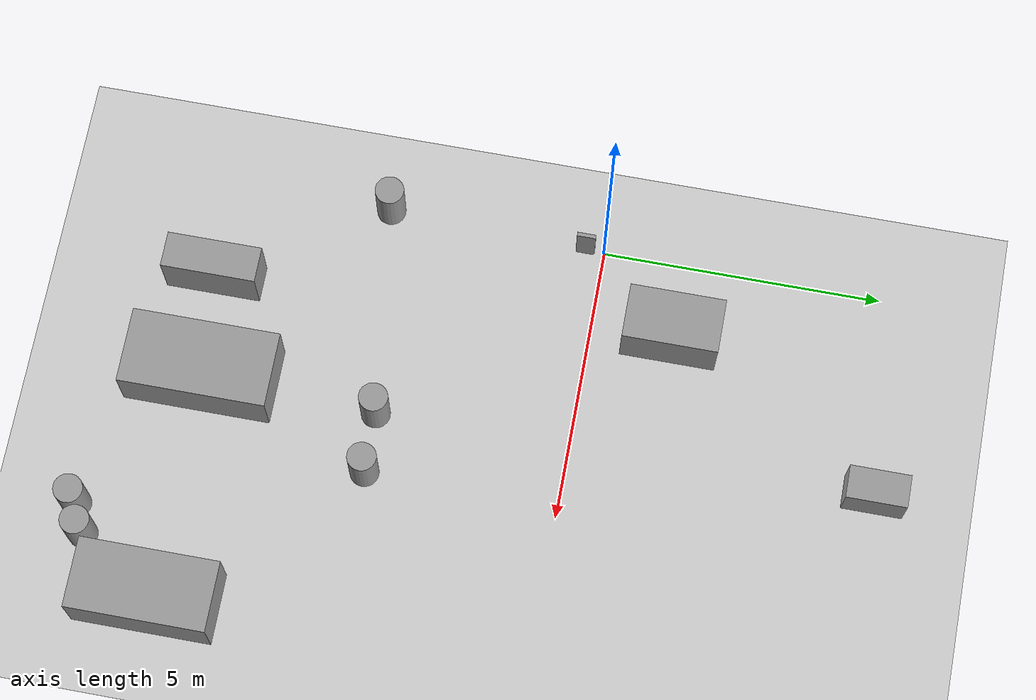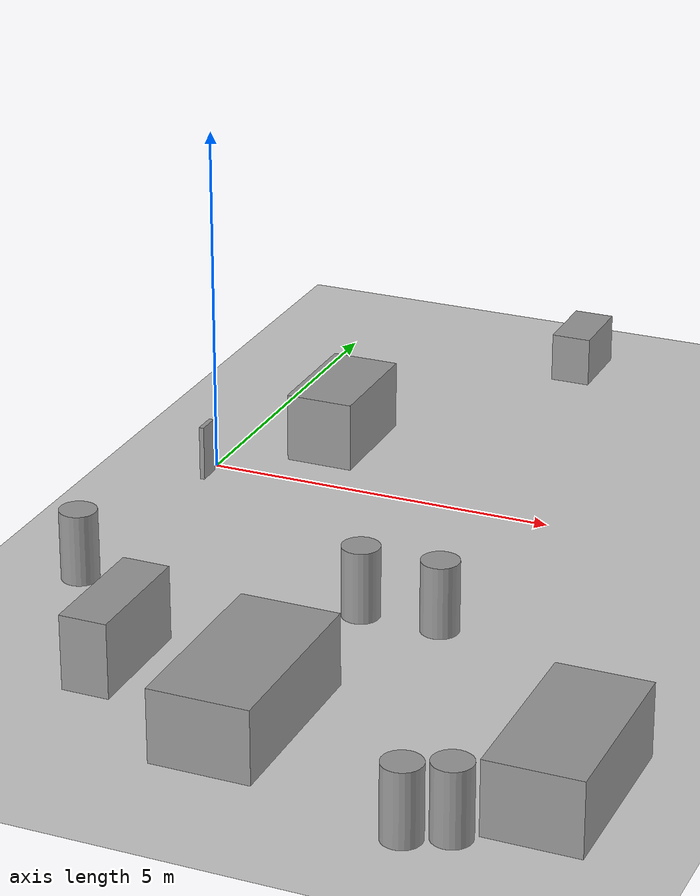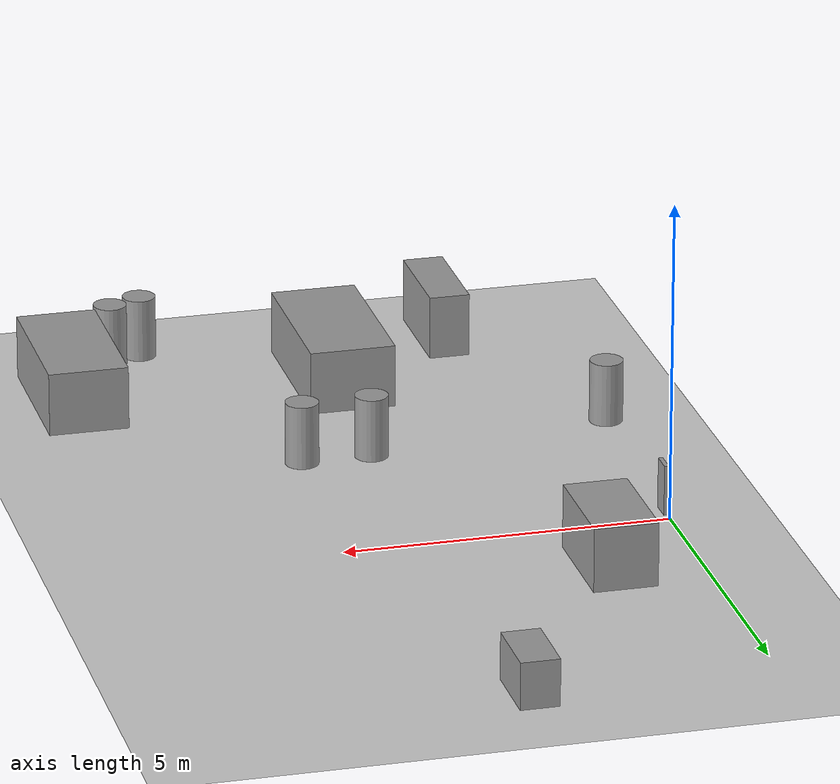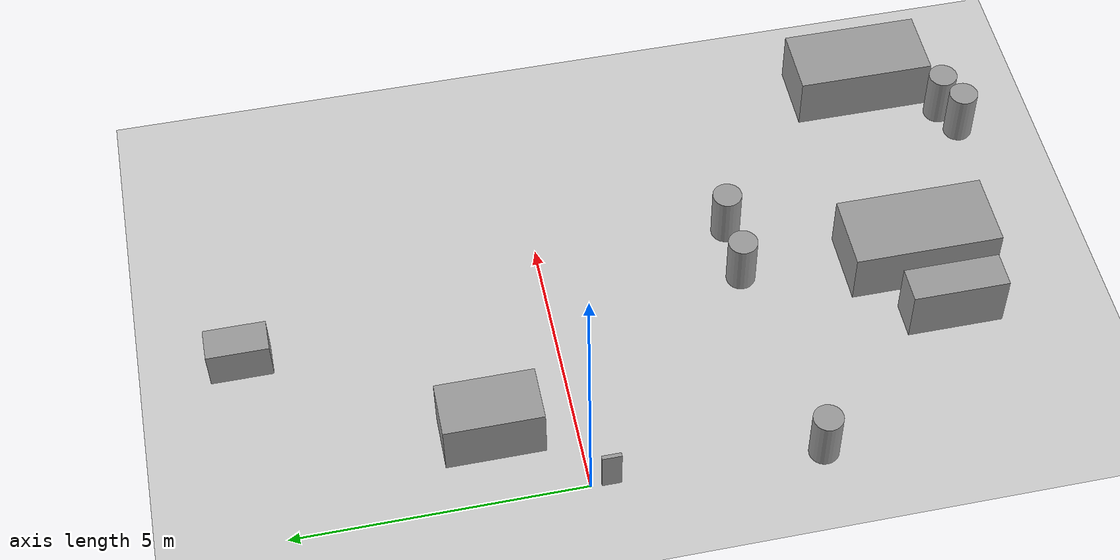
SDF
<sdf version="1.6">
 <world name="default">
  <model name="ground_plane">
   <static>1</static>
   <link name="link">
    <collision name="collision">
     <geometry><plane><normal>0 0 1</normal><size>100 100</size></plane></geometry>
     <surface><friction><ode><mu>100</mu><mu2>50</mu2></ode></friction></surface>
    </collision>
    <visual name="visual">
     <cast_shadows>0</cast_shadows>
     <geometry><plane><normal>0 0 1</normal><size>100 100</size></plane></geometry>
     <material>
      <script><uri>file://media/materials/scripts/gazebo.material</uri><name>Gazebo/Grey</name></script>
     </material>
    </visual>
   </link>
  </model>
  <model name="cma_sofa_2_lugares">
   <link name="link_0">
    <pose>-0.034013 -0.039828 0 0 -0 0</pose>
    <inertial>
     <mass>1.66071</mass>
     <inertia>
      <ixx>0.538183</ixx>
      <ixy>0</ixy>
      <ixz>0</ixz>
      <iyy>0.270519</iyy>
      <iyz>0</iyz>
      <izz>0.531915</izz>
     </inertia>
    </inertial>
    <visual name="visual">
     <geometry><box><size>0.977147 1.69968 1</size></box></geometry>
     <material>
      <lighting>1</lighting>
      <script><uri>file://media/materials/scripts/gazebo.material</uri><name>Gazebo/Grey</name></script>
      <ambient>0.3 0.3 0.3 1</ambient>
      <diffuse>0.7 0.7 0.7 1</diffuse>
      <specular>0.01 0.01 0.01 1</specular>
      <emissive>0 0 0 1</emissive>
     </material>
    </visual>
    <collision name="collision">
     <geometry><box><size>0.977147 1.69968 1</size></box></geometry>
     <surface>
      <friction>
       <ode><mu>1</mu><mu2>1</mu2><fdir1>0 0 0</fdir1><slip1>0</slip1><slip2>0</slip2></ode>
       <torsional>
        <coefficient>1</coefficient>
        <patch_radius>0</patch_radius>
        <surface_radius>0</surface_radius>
        <use_patch_radius>1</use_patch_radius>
        <ode><slip>0</slip></ode>
       </torsional>
      </friction>
      <bounce><restitution_coefficient>0</restitution_coefficient><threshold>1e+06</threshold></bounce>
      <contact>
       <collide_without_contact>0</collide_without_contact>
       <collide_without_contact_bitmask>1</collide_without_contact_bitmask>
       <collide_bitmask>1</collide_bitmask>
       <ode>
        <soft_cfm>0</soft_cfm>
        <soft_erp>0.2</soft_erp>
        <kp>1e+13</kp>
        <kd>1</kd>
        <max_vel>0.01</max_vel>
        <min_depth>0</min_depth>
       </ode>
       <bullet>
        <split_impulse>1</split_impulse>
        <split_impulse_penetration_threshold>-0.01</split_impulse_penetration_threshold>
        <soft_cfm>0</soft_cfm>
        <soft_erp>0.2</soft_erp>
        <kp>1e+13</kp>
        <kd>1</kd>
       </bullet>
      </contact>
     </surface>
    </collision>
   </link>
   <static>0</static>
   <pose>1.36456 1.47292 0.5 0 -0 2e-06</pose>
  </model>
  <model name="cma_sofa_ch2">
   <link name="link_0">
    <pose>7.54152 -9.06061 0.5 0 -0 0</pose>
    <inertial>
     <mass>3.05287</mass>
     <inertia><ixx>1.79053</ixx><ixy>0</ixy><ixz>0</ixz><iyy>0.647089</iyy><iyz>0</iyz><izz>1.92881</izz></inertia>
    </inertial>
    <visual name="visual">
     <geometry><box><size>1.24235 2.45729 1</size></box></geometry>
     <material>
      <lighting>1</lighting>
      <script><uri>file://media/materials/scripts/gazebo.material</uri><name>Gazebo/Grey</name></script>
      <ambient>0.3 0.3 0.3 1</ambient>
      <diffuse>0.7 0.7 0.7 1</diffuse>
      <specular>0.01 0.01 0.01 1</specular>
      <emissive>0 0 0 1</emissive>
     </material>
    </visual>
    <collision name="collision">
     <geometry><box><size>1.24235 2.45729 1</size></box></geometry>
     <surface>
      <friction>
       <ode><mu>1</mu><mu2>1</mu2><fdir1>0 0 0</fdir1><slip1>0</slip1><slip2>0</slip2></ode>
       <torsional>
        <coefficient>1</coefficient>
        <patch_radius>0</patch_radius>
        <surface_radius>0</surface_radius>
        <use_patch_radius>1</use_patch_radius>
        <ode><slip>0</slip></ode>
       </torsional>
      </friction>
      <bounce><restitution_coefficient>0</restitution_coefficient><threshold>1e+06</threshold></bounce>
      <contact>
       <collide_without_contact>0</collide_without_contact>
       <collide_without_contact_bitmask>1</collide_without_contact_bitmask>
       <collide_bitmask>1</collide_bitmask>
       <ode>
        <soft_cfm>0</soft_cfm>
        <soft_erp>0.2</soft_erp>
        <kp>1e+13</kp>
        <kd>1</kd>
        <max_vel>0.01</max_vel>
        <min_depth>0</min_depth>
       </ode>
       <bullet>
        <split_impulse>1</split_impulse>
        <split_impulse_penetration_threshold>-0.01</split_impulse_penetration_threshold>
        <soft_cfm>0</soft_cfm>
        <soft_erp>0.2</soft_erp>
        <kp>1e+13</kp>
        <kd>1</kd>
       </bullet>
      </contact>
     </surface>
    </collision>
   </link>
   <model name="cma_armarioL">
    <link name="link_0">
     <pose>3.66226 -6.16735 0.5 0 -0 0</pose>
     <inertial>
      <mass>1.04821</mass>
      <inertia>
       <ixx>0.330873</ixx>
       <ixy>0</ixy>
       <ixz>0</ixz>
       <iyy>0.121777</iyy>
       <iyz>0</iyz>
       <izz>0.277949</izz>
      </inertia>
     </inertial>
     <visual name="visual">
      <geometry><box><size>0.627792 1.66972 1</size></box></geometry>
      <material>
       <lighting>1</lighting>
       <script><uri>file://media/materials/scripts/gazebo.material</uri><name>Gazebo/Grey</name></script>
       <ambient>0.3 0.3 0.3 1</ambient>
       <diffuse>0.7 0.7 0.7 1</diffuse>
       <specular>0.01 0.01 0.01 1</specular>
       <emissive>0 0 0 1</emissive>
      </material>
     </visual>
     <collision name="collision">
      <geometry><box><size>0.627792 1.66972 1</size></box></geometry>
      <surface>
       <friction>
        <ode><mu>1</mu><mu2>1</mu2><fdir1>0 0 0</fdir1><slip1>0</slip1><slip2>0</slip2></ode>
        <torsional>
         <coefficient>1</coefficient>
         <patch_radius>0</patch_radius>
         <surface_radius>0</surface_radius>
         <use_patch_radius>1</use_patch_radius>
         <ode><slip>0</slip></ode>
        </torsional>
       </friction>
       <bounce><restitution_coefficient>0</restitution_coefficient><threshold>1e+06</threshold></bounce>
       <contact>
        <collide_without_contact>0</collide_without_contact>
        <collide_without_contact_bitmask>1</collide_without_contact_bitmask>
        <collide_bitmask>1</collide_bitmask>
        <ode>
         <soft_cfm>0</soft_cfm>
         <soft_erp>0.2</soft_erp>
         <kp>1e+13</kp>
         <kd>1</kd>
         <max_vel>0.01</max_vel>
         <min_depth>0</min_depth>
        </ode>
        <bullet>
         <split_impulse>1</split_impulse>
         <split_impulse_penetration_threshold>-0.01</split_impulse_penetration_threshold>
         <soft_cfm>0</soft_cfm>
         <soft_erp>0.2</soft_erp>
         <kp>1e+13</kp>
         <kd>1</kd>
        </bullet>
       </contact>
      </surface>
     </collision>
    </link>
    <static>0</static>
    <pose>-1.91803 -2.92011 0.5 0 -0 0</pose>
   </model>
   <model name="cma_cesto">
    <link name="link_1">
     <pose>-0.329659 -1.55494 0 0 -0 0</pose>
     <inertial>
      <mass>0.267897</mass>
      <inertia>
       <ixx>0.0268102</ixx>
       <ixy>0</ixy>
       <ixz>0</ixz>
       <iyy>0.0268102</iyy>
       <iyz>0</iyz>
       <izz>0.00897111</izz>
      </inertia>
     </inertial>
     <visual name="visual">
      <geometry><cylinder><radius>0.258792</radius><length>1</length></cylinder></geometry>
      <material>
       <lighting>1</lighting>
       <script><uri>file://media/materials/scripts/gazebo.material</uri><name>Gazebo/Grey</name></script>
       <ambient>0.3 0.3 0.3 1</ambient>
       <diffuse>0.7 0.7 0.7 1</diffuse>
       <specular>0.01 0.01 0.01 1</specular>
       <emissive>0 0 0 1</emissive>
      </material>
     </visual>
     <collision name="collision">
      <geometry><cylinder><radius>0.258792</radius><length>1</length></cylinder></geometry>
      <surface>
       <friction>
        <ode><mu>1</mu><mu2>1</mu2><fdir1>0 0 0</fdir1><slip1>0</slip1><slip2>0</slip2></ode>
        <torsional>
         <coefficient>1</coefficient>
         <patch_radius>0</patch_radius>
         <surface_radius>0</surface_radius>
         <use_patch_radius>1</use_patch_radius>
         <ode><slip>0</slip></ode>
        </torsional>
       </friction>
       <bounce><restitution_coefficient>0</restitution_coefficient><threshold>1e+06</threshold></bounce>
       <contact>
        <collide_without_contact>0</collide_without_contact>
        <collide_without_contact_bitmask>1</collide_without_contact_bitmask>
        <collide_bitmask>1</collide_bitmask>
        <ode>
         <soft_cfm>0</soft_cfm>
         <soft_erp>0.2</soft_erp>
         <kp>1e+13</kp>
         <kd>1</kd>
         <max_vel>0.01</max_vel>
         <min_depth>0</min_depth>
        </ode>
        <bullet>
         <split_impulse>1</split_impulse>
         <split_impulse_penetration_threshold>-0.01</split_impulse_penetration_threshold>
         <soft_cfm>0</soft_cfm>
         <soft_erp>0.2</soft_erp>
         <kp>1e+13</kp>
         <kd>1</kd>
        </bullet>
       </contact>
      </surface>
     </collision>
    </link>
    <static>0</static>
    <pose>6.97935 -8.88509 0.5 0 -0 0</pose>
   </model>
   <model name="cma_cesto_0">
    <link name="link_1">
     <pose>-0.329659 -1.55494 0 0 -0 0</pose>
     <inertial>
      <mass>0.267897</mass>
      <inertia>
       <ixx>0.0268102</ixx>
       <ixy>0</ixy>
       <ixz>0</ixz>
       <iyy>0.0268102</iyy>
       <iyz>0</iyz>
       <izz>0.00897111</izz>
      </inertia>
     </inertial>
     <visual name="visual">
      <geometry><cylinder><radius>0.258792</radius><length>1</length></cylinder></geometry>
      <material>
       <lighting>1</lighting>
       <script><uri>file://media/materials/scripts/gazebo.material</uri><name>Gazebo/Grey</name></script>
       <ambient>0.3 0.3 0.3 1</ambient>
       <diffuse>0.7 0.7 0.7 1</diffuse>
       <specular>0.01 0.01 0.01 1</specular>
       <emissive>0 0 0 1</emissive>
      </material>
     </visual>
     <collision name="collision">
      <geometry><cylinder><radius>0.258792</radius><length>1</length></cylinder></geometry>
      <surface>
       <friction>
        <ode><mu>1</mu><mu2>1</mu2><fdir1>0 0 0</fdir1><slip1>0</slip1><slip2>0</slip2></ode>
        <torsional>
         <coefficient>1</coefficient>
         <patch_radius>0</patch_radius>
         <surface_radius>0</surface_radius>
         <use_patch_radius>1</use_patch_radius>
         <ode><slip>0</slip></ode>
        </torsional>
       </friction>
       <bounce><restitution_coefficient>0</restitution_coefficient><threshold>1e+06</threshold></bounce>
       <contact>
        <collide_without_contact>0</collide_without_contact>
        <collide_without_contact_bitmask>1</collide_without_contact_bitmask>
        <collide_bitmask>1</collide_bitmask>
        <ode>
         <soft_cfm>0</soft_cfm>
         <soft_erp>0.2</soft_erp>
         <kp>1e+13</kp>
         <kd>1</kd>
         <max_vel>0.01</max_vel>
         <min_depth>0</min_depth>
        </ode>
        <bullet>
         <split_impulse>1</split_impulse>
         <split_impulse_penetration_threshold>-0.01</split_impulse_penetration_threshold>
         <soft_cfm>0</soft_cfm>
         <soft_erp>0.2</soft_erp>
         <kp>1e+13</kp>
         <kd>1</kd>
        </bullet>
       </contact>
      </surface>
     </collision>
    </link>
    <static>0</static>
    <pose>6.4663 -9.11922 0.5 0 -0 0</pose>
   </model>
   <model name="cma_cesto_1">
    <link name="link_1">
     <pose>-0.329659 -1.55494 0 0 -0 0</pose>
     <inertial>
      <mass>0.267897</mass>
      <inertia>
       <ixx>0.0268102</ixx>
       <ixy>0</ixy>
       <ixz>0</ixz>
       <iyy>0.0268102</iyy>
       <iyz>0</iyz>
       <izz>0.00897111</izz>
      </inertia>
     </inertial>
     <visual name="visual">
      <geometry><cylinder><radius>0.258792</radius><length>1</length></cylinder></geometry>
      <material>
       <lighting>1</lighting>
       <script><uri>file://media/materials/scripts/gazebo.material</uri><name>Gazebo/Grey</name></script>
       <ambient>0.3 0.3 0.3 1</ambient>
       <diffuse>0.7 0.7 0.7 1</diffuse>
       <specular>0.01 0.01 0.01 1</specular>
       <emissive>0 0 0 1</emissive>
      </material>
     </visual>
     <collision name="collision">
      <geometry><cylinder><radius>0.258792</radius><length>1</length></cylinder></geometry>
      <surface>
       <friction>
        <ode><mu>1</mu><mu2>1</mu2><fdir1>0 0 0</fdir1><slip1>0</slip1><slip2>0</slip2></ode>
        <torsional>
         <coefficient>1</coefficient>
         <patch_radius>0</patch_radius>
         <surface_radius>0</surface_radius>
         <use_patch_radius>1</use_patch_radius>
         <ode><slip>0</slip></ode>
        </torsional>
       </friction>
       <bounce><restitution_coefficient>0</restitution_coefficient><threshold>1e+06</threshold></bounce>
       <contact>
        <collide_without_contact>0</collide_without_contact>
        <collide_without_contact_bitmask>1</collide_without_contact_bitmask>
        <collide_bitmask>1</collide_bitmask>
        <ode>
         <soft_cfm>0</soft_cfm>
         <soft_erp>0.2</soft_erp>
         <kp>1e+13</kp>
         <kd>1</kd>
         <max_vel>0.01</max_vel>
         <min_depth>0</min_depth>
        </ode>
        <bullet>
         <split_impulse>1</split_impulse>
         <split_impulse_penetration_threshold>-0.01</split_impulse_penetration_threshold>
         <soft_cfm>0</soft_cfm>
         <soft_erp>0.2</soft_erp>
         <kp>1e+13</kp>
         <kd>1</kd>
        </bullet>
       </contact>
      </surface>
     </collision>
    </link>
    <static>0</static>
    <pose>0.091229 -4.78918 0.5 0 -0 0</pose>
   </model>
   <model name="cma_cesto_2">
    <link name="link_1">
     <pose>-0.329659 -1.55494 0 0 -0 0</pose>
     <inertial>
      <mass>0.267897</mass>
      <inertia>
       <ixx>0.0268102</ixx>
       <ixy>0</ixy>
       <ixz>0</ixz>
       <iyy>0.0268102</iyy>
       <iyz>0</iyz>
       <izz>0.00897111</izz>
      </inertia>
     </inertial>
     <visual name="visual">
      <geometry><cylinder><radius>0.258792</radius><length>1</length></cylinder></geometry>
      <material>
       <lighting>1</lighting>
       <script><uri>file://media/materials/scripts/gazebo.material</uri><name>Gazebo/Grey</name></script>
       <ambient>0.3 0.3 0.3 1</ambient>
       <diffuse>0.7 0.7 0.7 1</diffuse>
       <specular>0.01 0.01 0.01 1</specular>
       <emissive>0 0 0 1</emissive>
      </material>
     </visual>
     <collision name="collision">
      <geometry><cylinder><radius>0.258792</radius><length>1</length></cylinder></geometry>
      <surface>
       <friction>
        <ode><mu>1</mu><mu2>1</mu2><fdir1>0 0 0</fdir1><slip1>0</slip1><slip2>0</slip2></ode>
        <torsional>
         <coefficient>1</coefficient>
         <patch_radius>0</patch_radius>
         <surface_radius>0</surface_radius>
         <use_patch_radius>1</use_patch_radius>
         <ode><slip>0</slip></ode>
        </torsional>
       </friction>
       <bounce><restitution_coefficient>0</restitution_coefficient><threshold>1e+06</threshold></bounce>
       <contact>
        <collide_without_contact>0</collide_without_contact>
        <collide_without_contact_bitmask>1</collide_without_contact_bitmask>
        <collide_bitmask>1</collide_bitmask>
        <ode>
         <soft_cfm>0</soft_cfm>
         <soft_erp>0.2</soft_erp>
         <kp>1e+13</kp>
         <kd>1</kd>
         <max_vel>0.01</max_vel>
         <min_depth>0</min_depth>
        </ode>
        <bullet>
         <split_impulse>1</split_impulse>
         <split_impulse_penetration_threshold>-0.01</split_impulse_penetration_threshold>
         <soft_cfm>0</soft_cfm>
         <soft_erp>0.2</soft_erp>
         <kp>1e+13</kp>
         <kd>1</kd>
        </bullet>
       </contact>
      </surface>
     </collision>
    </link>
    <static>0</static>
    <pose>5.00434 -4.30015 0.5 0 -0 0</pose>
   </model>
   <model name="cma_cesto_3">
    <link name="link_1">
     <pose>-0.329659 -1.55494 0 0 -0 0</pose>
     <inertial>
      <mass>0.267897</mass>
      <inertia>
       <ixx>0.0268102</ixx>
       <ixy>0</ixy>
       <ixz>0</ixz>
       <iyy>0.0268102</iyy>
       <iyz>0</iyz>
       <izz>0.00897111</izz>
      </inertia>
     </inertial>
     <visual name="visual">
      <geometry><cylinder><radius>0.258792</radius><length>1</length></cylinder></geometry>
      <material>
       <lighting>1</lighting>
       <script><uri>file://media/materials/scripts/gazebo.material</uri><name>Gazebo/Grey</name></script>
       <ambient>0.3 0.3 0.3 1</ambient>
       <diffuse>0.7 0.7 0.7 1</diffuse>
       <specular>0.01 0.01 0.01 1</specular>
       <emissive>0 0 0 1</emissive>
      </material>
     </visual>
     <collision name="collision">
      <geometry><cylinder><radius>0.258792</radius><length>1</length></cylinder></geometry>
      <surface>
       <friction>
        <ode><mu>1</mu><mu2>1</mu2><fdir1>0 0 0</fdir1><slip1>0</slip1><slip2>0</slip2></ode>
        <torsional>
         <coefficient>1</coefficient>
         <patch_radius>0</patch_radius>
         <surface_radius>0</surface_radius>
         <use_patch_radius>1</use_patch_radius>
         <ode><slip>0</slip></ode>
        </torsional>
       </friction>
       <bounce><restitution_coefficient>0</restitution_coefficient><threshold>1e+06</threshold></bounce>
       <contact>
        <collide_without_contact>0</collide_without_contact>
        <collide_without_contact_bitmask>1</collide_without_contact_bitmask>
        <collide_bitmask>1</collide_bitmask>
        <ode>
         <soft_cfm>0</soft_cfm>
         <soft_erp>0.2</soft_erp>
         <kp>1e+13</kp>
         <kd>1</kd>
         <max_vel>0.01</max_vel>
         <min_depth>0</min_depth>
        </ode>
        <bullet>
         <split_impulse>1</split_impulse>
         <split_impulse_penetration_threshold>-0.01</split_impulse_penetration_threshold>
         <soft_cfm>0</soft_cfm>
         <soft_erp>0.2</soft_erp>
         <kp>1e+13</kp>
         <kd>1</kd>
        </bullet>
       </contact>
      </surface>
     </collision>
    </link>
    <static>0</static>
    <pose>3.91768 -4.3154 0.5 0 -0 0</pose>
   </model>
   <model name="cma_sofa_ch1">
    <link name="link_0">
     <pose>-4e-06 5e-06 0 0 -0 0</pose>
     <inertial>
      <mass>3.51192</mass>
      <inertia><ixx>2.30831</ixx><ixy>0</ixy><ixz>0</ixz><iyy>0.816746</iyy><iyz>0</iyz><izz>2.53974</izz></inertia>
     </inertial>
     <visual name="visual">
      <geometry><box><size>1.33823 2.62439 1</size></box></geometry>
      <material>
       <lighting>1</lighting>
       <script><uri>file://media/materials/scripts/gazebo.material</uri><name>Gazebo/Grey</name></script>
       <ambient>0.3 0.3 0.3 1</ambient>
       <diffuse>0.7 0.7 0.7 1</diffuse>
       <specular>0.01 0.01 0.01 1</specular>
       <emissive>0 0 0 1</emissive>
      </material>
     </visual>
     <collision name="collision">
      <geometry><box><size>1.33823 2.62439 1</size></box></geometry>
      <surface>
       <friction>
        <ode><mu>1</mu><mu2>1</mu2><fdir1>0 0 0</fdir1><slip1>0</slip1><slip2>0</slip2></ode>
        <torsional>
         <coefficient>1</coefficient>
         <patch_radius>0</patch_radius>
         <surface_radius>0</surface_radius>
         <use_patch_radius>1</use_patch_radius>
         <ode><slip>0</slip></ode>
        </torsional>
       </friction>
       <bounce><restitution_coefficient>0</restitution_coefficient><threshold>1e+06</threshold></bounce>
       <contact>
        <collide_without_contact>0</collide_without_contact>
        <collide_without_contact_bitmask>1</collide_without_contact_bitmask>
        <collide_bitmask>1</collide_bitmask>
        <ode>
         <soft_cfm>0</soft_cfm>
         <soft_erp>0.2</soft_erp>
         <kp>1e+13</kp>
         <kd>1</kd>
         <max_vel>0.01</max_vel>
         <min_depth>0</min_depth>
        </ode>
        <bullet>
         <split_impulse>1</split_impulse>
         <split_impulse_penetration_threshold>-0.01</split_impulse_penetration_threshold>
         <soft_cfm>0</soft_cfm>
         <soft_erp>0.2</soft_erp>
         <kp>1e+13</kp>
         <kd>1</kd>
        </bullet>
       </contact>
      </surface>
     </collision>
    </link>
    <static>0</static>
    <pose>3.4236 -8.99816 0.5 0 -0 0</pose>
   </model>
   <static>0</static>
   <pose>0.11721 2.42164 0 0 -0 0</pose>
  </model>
  <model name="cma_pe_mesa2">
   <link name="link_0">
    <pose>-1e-06 0 0 0 -0 0</pose>
    <inertial>
     <mass>0.0184993</mass>
     <inertia>
      <ixx>0.00113785</ixx>
      <ixy>0</ixy>
      <ixz>0</ixz>
      <iyy>0.000973568</iyy>
      <iyz>0</iyz>
      <izz>0.000179385</izz>
     </inertia>
    </inertial>
    <visual name="visual">
     <geometry><box><size>0.070005 0.33386 0.791592</size></box></geometry>
     <material>
      <lighting>1</lighting>
      <script><uri>file://media/materials/scripts/gazebo.material</uri><name>Gazebo/Grey</name></script>
      <ambient>0.3 0.3 0.3 1</ambient>
      <diffuse>0.7 0.7 0.7 1</diffuse>
      <specular>0.01 0.01 0.01 1</specular>
      <emissive>0 0 0 1</emissive>
     </material>
    </visual>
    <collision name="collision">
     <geometry><box><size>0.070005 0.33386 0.791592</size></box></geometry>
     <surface>
      <friction>
       <ode><mu>1</mu><mu2>1</mu2><fdir1>0 0 0</fdir1><slip1>0</slip1><slip2>0</slip2></ode>
       <torsional>
        <coefficient>1</coefficient>
        <patch_radius>0</patch_radius>
        <surface_radius>0</surface_radius>
        <use_patch_radius>1</use_patch_radius>
        <ode><slip>0</slip></ode>
       </torsional>
      </friction>
      <bounce><restitution_coefficient>0</restitution_coefficient><threshold>1e+06</threshold></bounce>
      <contact>
       <collide_without_contact>0</collide_without_contact>
       <collide_without_contact_bitmask>1</collide_without_contact_bitmask>
       <collide_bitmask>1</collide_bitmask>
       <ode>
        <soft_cfm>0</soft_cfm>
        <soft_erp>0.2</soft_erp>
        <kp>1e+13</kp>
        <kd>1</kd>
        <max_vel>0.01</max_vel>
        <min_depth>0</min_depth>
       </ode>
       <bullet>
        <split_impulse>1</split_impulse>
        <split_impulse_penetration_threshold>-0.01</split_impulse_penetration_threshold>
        <soft_cfm>0</soft_cfm>
        <soft_erp>0.2</soft_erp>
        <kp>1e+13</kp>
        <kd>1</kd>
       </bullet>
      </contact>
     </surface>
    </collision>
   </link>
   <static>0</static>
   <pose>0.008627 -0.342089 0.395787 -1e-06 -2e-06 -0.000534</pose>
  </model>
  <model name="cma_area_a1">
   <link name="link_0">
    <pose>3.62133 5.38868 0.5 0 -0 0</pose>
    <inertial>
     <mass>0.459312</mass>
     <inertia>
      <ixx>0.0646994</ixx>
      <ixy>0</ixy>
      <ixz>0</ixz>
      <iyy>0.0334776</iyy>
      <iyz>0</iyz>
      <izz>0.0574177</izz>
     </inertia>
    </inertial>
    <visual name="visual">
     <geometry><box><size>0.584971 1.07606 0.729683</size></box></geometry>
     <material>
      <lighting>1</lighting>
      <script><uri>file://media/materials/scripts/gazebo.material</uri><name>Gazebo/Grey</name></script>
      <ambient>0.3 0.3 0.3 1</ambient>
      <diffuse>0.7 0.7 0.7 1</diffuse>
      <specular>0.01 0.01 0.01 1</specular>
      <emissive>0 0 0 1</emissive>
     </material>
    </visual>
    <collision name="collision">
     <geometry><box><size>0.584971 1.07606 0.729683</size></box></geometry>
     <surface>
      <friction>
       <ode><mu>1</mu><mu2>1</mu2><fdir1>0 0 0</fdir1><slip1>0</slip1><slip2>0</slip2></ode>
       <torsional>
        <coefficient>1</coefficient>
        <patch_radius>0</patch_radius>
        <surface_radius>0</surface_radius>
        <use_patch_radius>1</use_patch_radius>
        <ode><slip>0</slip></ode>
       </torsional>
      </friction>
      <bounce><restitution_coefficient>0</restitution_coefficient><threshold>1e+06</threshold></bounce>
      <contact>
       <collide_without_contact>0</collide_without_contact>
       <collide_without_contact_bitmask>1</collide_without_contact_bitmask>
       <collide_bitmask>1</collide_bitmask>
       <ode>
        <soft_cfm>0</soft_cfm>
        <soft_erp>0.2</soft_erp>
        <kp>1e+13</kp>
        <kd>1</kd>
        <max_vel>0.01</max_vel>
        <min_depth>0</min_depth>
       </ode>
       <bullet>
        <split_impulse>1</split_impulse>
        <split_impulse_penetration_threshold>-0.01</split_impulse_penetration_threshold>
        <soft_cfm>0</soft_cfm>
        <soft_erp>0.2</soft_erp>
        <kp>1e+13</kp>
        <kd>1</kd>
       </bullet>
      </contact>
     </surface>
    </collision>
   </link>
   <static>0</static>
   <pose>0 0 -0.135158 0 -0 0</pose>
  </model>
 </world>
</sdf>
